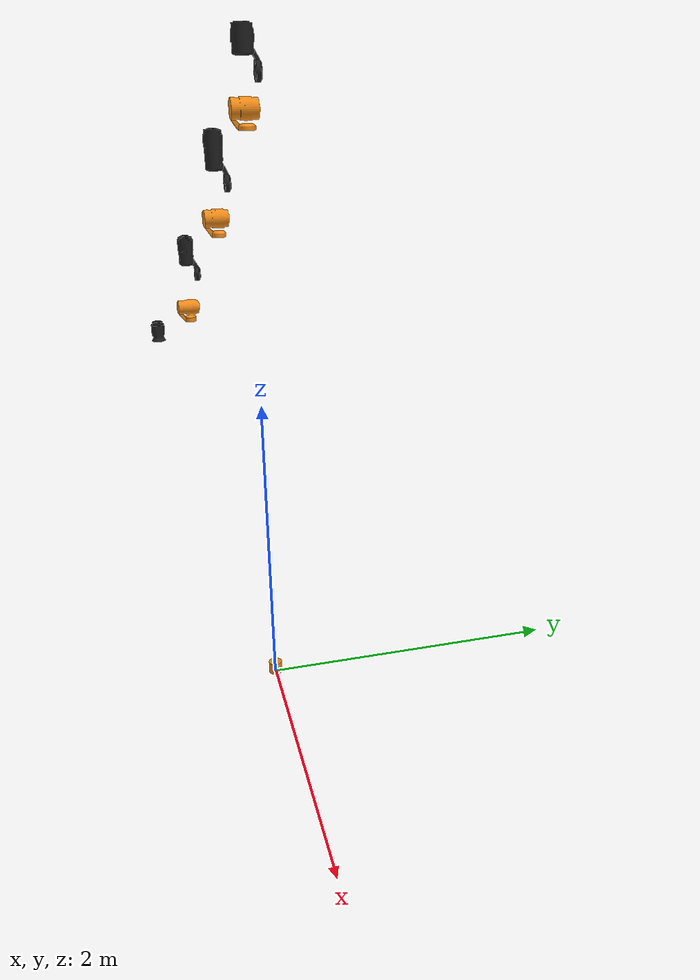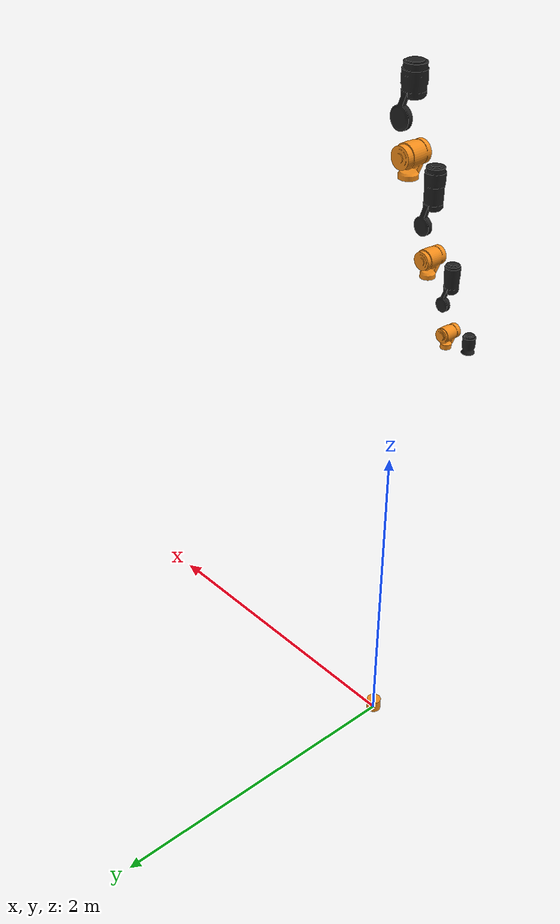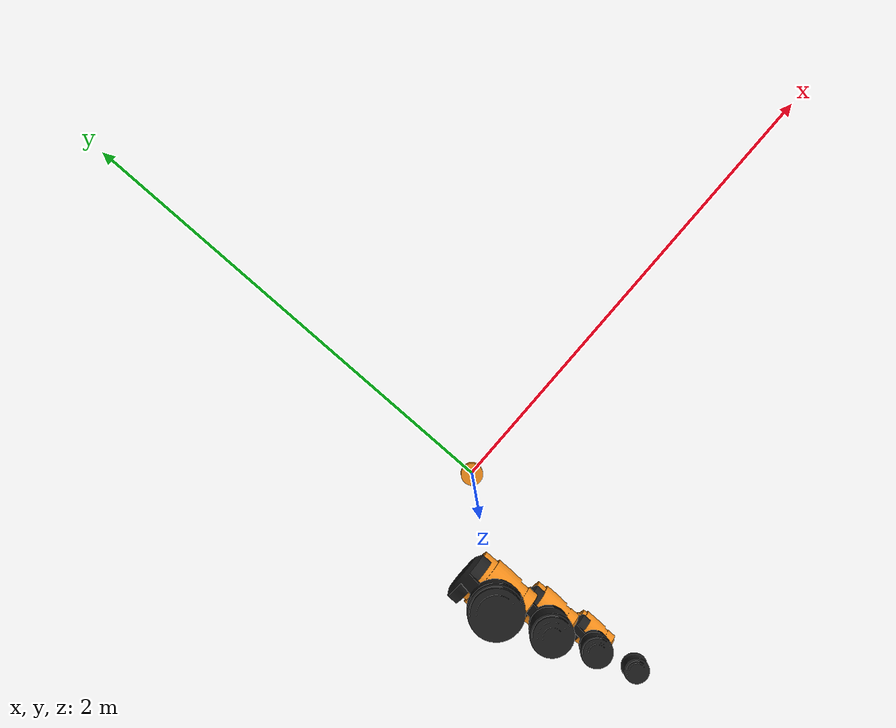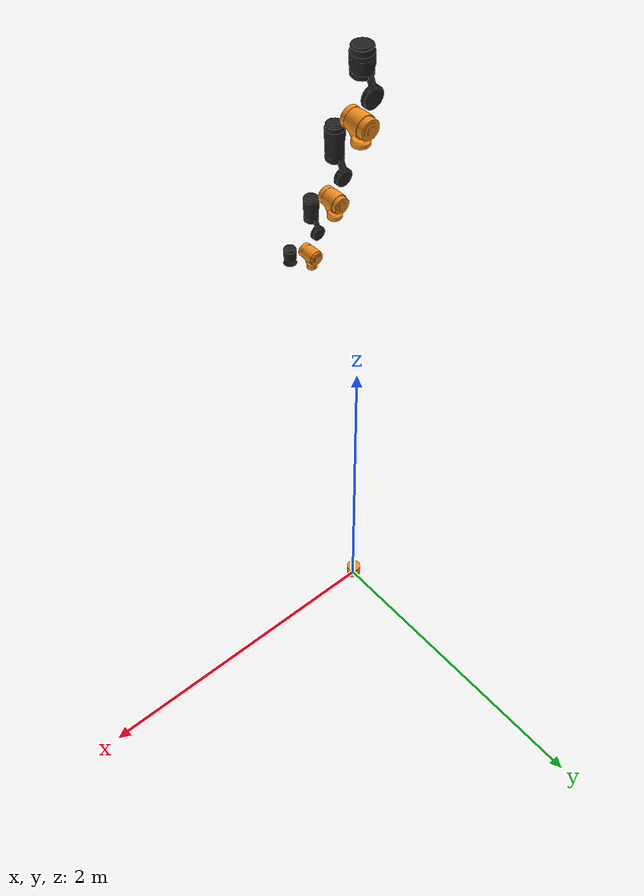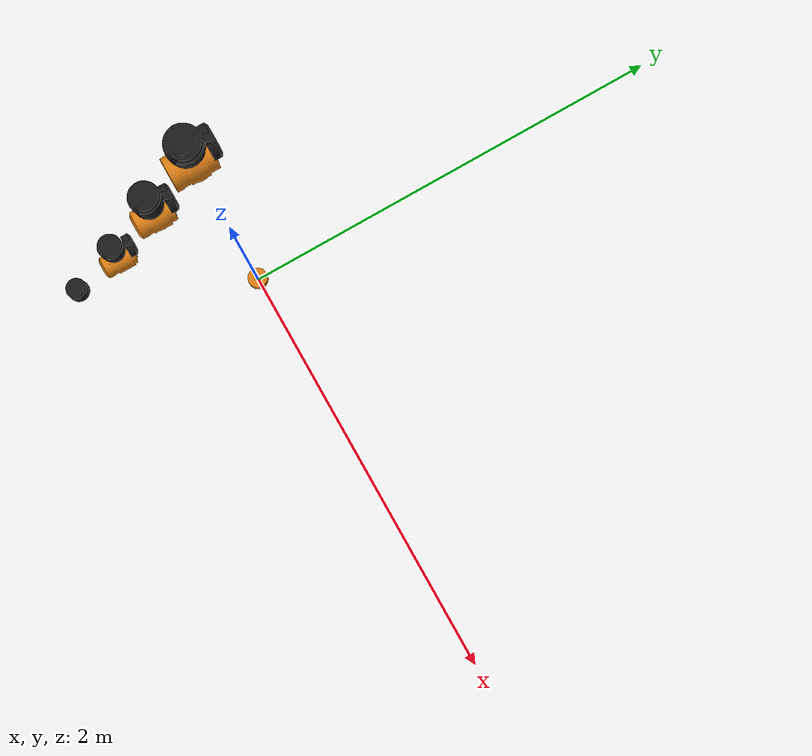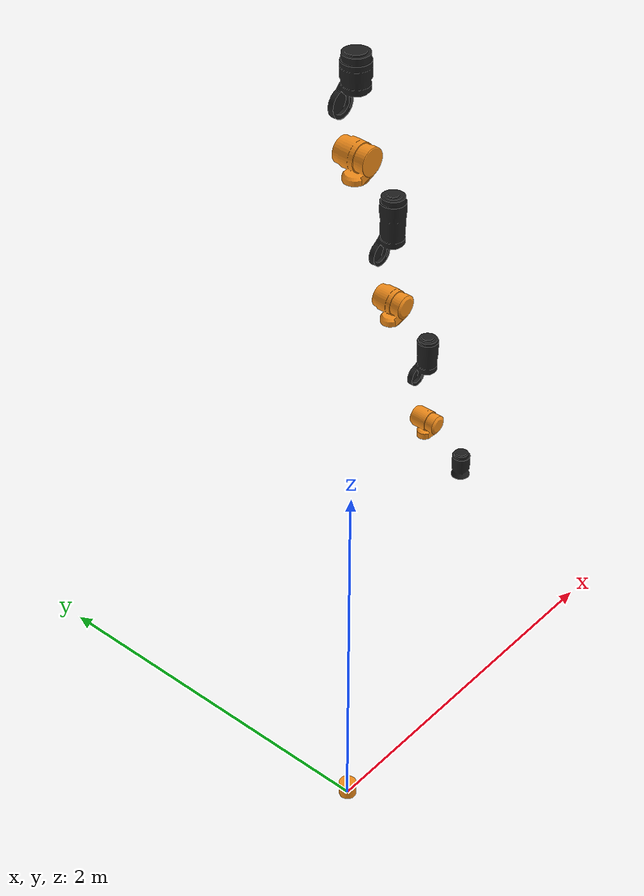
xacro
<?xml version="1.0"?>
<robot name="schunk_lwa" xmlns:xacro="http://www.ros.org/wiki/xacro">

  <xacro:include filename="$(find schunk_description)/urdf/lwa/lwa.gazebo.xacro" />
  <xacro:include filename="$(find schunk_description)/urdf/lwa/lwa.transmission.xacro" />
  <xacro:include filename="$(find schunk_description)/urdf/common.xacro"/>
  <xacro:macro name="schunk_lwa" params="parent name *origin">

    <!-- joint between parent link and arm_base_link -->
    <joint name="${name}_base_joint" type="fixed" >
      <parent link="${parent}" />
      <child link="${name}_base_link" />
    </joint>

    <link name="${name}_base_link">
      <xacro:default_inertial/>
      <visual>
        <origin xyz="0 0 0.04" rpy="0 0 0" />
        <geometry>
          <cylinder radius="0.045" length="0.08"/>
        </geometry>
        <material name="orange" />
      </visual>
      <collision>
        <origin xyz="0 0 0.04" rpy="0 0 0" />
        <geometry>
          <cylinder radius="0.045" length="0.08"/>
        </geometry>
      </collision>
    </link>

    <!-- joint between arm_base_link and arm_1_link -->
    <joint name="${name}_1_joint" type="revolute">
      <origin xyz="0 0 4.0" rpy="0 0 3.1415926"/>
      <parent link="${name}_base_link"/>
      <child link="${name}_1_link"/>
      <axis xyz="0 0 1"/>
      <dynamics damping="10" />
      <limit effort="370" velocity="2.0" lower="-3.1415" upper="3.1415"/>
      <!--limit effort="370" velocity="2.0" lower="-6.25" upper="6.25"/-->
      <!--safety_controller k_position="20" k_velocity="50" soft_lower_limit="${-6.25 + 0.01}" soft_upper_limit="${6.25 - 0.01}" /-->
    </joint>

    <link name="${name}_1_link">
      <xacro:default_inertial/>
      <visual>
        <origin xyz="0 0 0" rpy="0 0 0" />
        <geometry>
          <mesh filename="package://schunk_description/meshes/lwa/lwa1.stl" />
        </geometry>
        <material name="black" />
      </visual>
      <collision>
        <origin xyz="0 0 0" rpy="0 0 0" />
        <geometry>
          <mesh filename="package://schunk_description/meshes/lwa/lwa1.stl" />
        </geometry>
      </collision>
    </link>

    <!-- joint between arm_1_link and arm_2_link -->
    <joint name="${name}_2_joint" type="revolute">
      <origin xyz="0 0 -0.2" rpy="1.5708 0 0"/>
      <parent link="${name}_1_link"/>
      <child link="${name}_2_link"/>
      <axis xyz="0 0 1"/>
      <dynamics damping="10" />
      <limit effort="370" velocity="2.0" lower="-1.97" upper="1.97"/>
      <!--safety_controller k_position="20" k_velocity="50" soft_lower_limit="${-1.97 + 0.01}"   soft_upper_limit="${1.97 - 0.01}" /-->
    </joint>

    <link name="${name}_2_link">
      <xacro:default_inertial/>
      <visual>
        <origin xyz="0 0 0" rpy="0 0 0" />
        <geometry>
          <mesh filename="package://schunk_description/meshes/lwa/lwa2.stl" />
        </geometry>
        <material name="orange" />
      </visual>
      <collision>
        <origin xyz="0 0 0" rpy="0 0 0" />
        <geometry>
          <mesh filename="package://schunk_description/meshes/lwa/lwa2.stl"/>
        </geometry>
      </collision>
    </link>

    <!-- joint between arm_2_link and arm_3_link -->
    <joint name="${name}_3_joint" type="revolute">
      <origin xyz="0 -0.408 -0.2" rpy="-1.5708 0 0"/>
      <parent link="${name}_2_link"/>
      <child link="${name}_3_link"/>
      <axis xyz="0 0 1"/>
      <dynamics damping="5" />
      <limit effort="176" velocity="2.0" lower="-3.1415" upper="3.1415"/>
      <!--limit effort="176" velocity="2.0" lower="-6.25" upper="6.25"/-->
      <!--safety_controller k_position="20" k_velocity="25" soft_lower_limit="${-6.25 + 0.01}" soft_upper_limit="${6.25 - 0.01}" /-->
    </joint>

    <link name="${name}_3_link">
      <xacro:default_inertial/>
      <visual>
        <origin xyz="0 0 0" rpy="0 0 0" />
        <geometry>
          <mesh filename="package://schunk_description/meshes/lwa/lwa3.stl" />
        </geometry>
        <material name="black" />
      </visual>
      <collision>
        <origin xyz="0 0 0" rpy="0 0 0" />
        <geometry>
          <mesh filename="package://schunk_description/meshes/lwa/lwa3.stl"/>
        </geometry>
      </collision>
    </link>

    <!-- joint between arm_3_link and arm_4_link -->
    <joint name="${name}_4_joint" type="revolute">
      <origin xyz="0 0 -0.2" rpy="1.5708 0 0" />
      <parent link="${name}_3_link"/>
      <child link="${name}_4_link"/>
      <axis xyz="0 0 1" />
      <dynamics damping="5" />
      <limit effort="176" velocity="2.0" lower="-1.97" upper="1.97"/>
      <!--safety_controller k_position="20" k_velocity="25" soft_lower_limit="${-1.97 + 0.01}" soft_upper_limit="${1.97 - 0.01}" /-->
    </joint>

    <link name="${name}_4_link">
      <xacro:default_inertial/>
      <visual>
        <origin xyz="0 0 0" rpy="0 0 0" />
        <geometry>
          <mesh filename="package://schunk_description/meshes/lwa/lwa4.stl" />
        </geometry>
        <material name="orange" />
      </visual>
      <collision>
        <origin xyz="0 0 0" rpy="0 0 0" />
        <geometry>
          <mesh filename="package://schunk_description/meshes/lwa/lwa4.stl"/>
        </geometry>
      </collision>
    </link>

    <!-- joint between arm_4_link and arm_5_link -->
    <joint name="${name}_5_joint" type="revolute">
      <origin xyz="0 -0.3165 -0.2" rpy="-1.5708 0 0" />
      <parent link="${name}_4_link"/>
      <child link="${name}_5_link"/>
      <axis xyz="0 0 1" />
      <dynamics damping="5" />
      <limit effort="41.6" velocity="2.0" lower="-3.1415" upper="3.1415" />
      <!--limit effort="41.6" velocity="2.0" lower="-6.25" upper="6.25" /-->
      <!--safety_controller k_position="20" k_velocity="25" soft_lower_limit="${-6.25 + 0.01}" soft_upper_limit="${6.25 - 0.01}" /-->
    </joint>

    <link name="${name}_5_link">
      <xacro:default_inertial/>
      <visual>
        <origin xyz="0 0 0" rpy="0 0 0" />
        <geometry>
          <mesh filename="package://schunk_description/meshes/lwa/lwa5.stl" />
        </geometry>
        <material name="black" />
      </visual>
      <collision>
        <origin xyz="0 0 0" rpy="0 0 0" />
        <geometry>
          <mesh filename="package://schunk_description/meshes/lwa/lwa5.stl"/>
        </geometry>
      </collision>
    </link>

    <!-- joint between arm_5_link and arm_6_link -->
    <joint name="${name}_6_joint" type="revolute">
      <origin xyz="0 0 -0.2" rpy="1.5708 0 0" />
      <parent link="${name}_5_link"/>
      <child link="${name}_6_link"/>
      <axis xyz="0 0 1" />
      <dynamics damping="5" />
      <limit effort="20.1" velocity="2.0" lower="-1.97" upper="1.97" />
      <!--safety_controller k_position="20" k_velocity="25" soft_lower_limit="${-1.97 + 0.01}" soft_upper_limit="${1.97 - 0.01}" /-->
    </joint>

    <link name="${name}_6_link">
      <xacro:default_inertial/>
      <visual>
        <origin xyz="0 0 0" rpy="0 0 0" />
        <geometry>
          <mesh filename="package://schunk_description/meshes/lwa/lwa6.stl" />
        </geometry>
        <material name="orange" />
      </visual>
      <collision>
        <origin xyz="0 0 0" rpy="0 0 0" />
        <geometry>
          <mesh filename="package://schunk_description/meshes/lwa/lwa6.stl"/>
        </geometry>
      </collision>
    </link>

    <!-- joint between arm_6_link and arm_7_link -->
    <joint name="${name}_7_joint" type="revolute">
      <origin xyz="0 -0.1927 -0.2" rpy="-1.5708 0 0" />
      <parent link="${name}_6_link"/>
      <child link="${name}_7_link"/>
      <axis xyz="0 0 1" />
      <dynamics damping="5" />
      <limit effort="9.6" velocity="2.0" lower="-3.1415" upper="3.1415" />
      <!--limit effort="9.6" velocity="2.0" lower="-6.25" upper="6.25" /-->
      <!--safety_controller k_position="20" k_velocity="25" soft_lower_limit="${-6.25 + 0.01}" soft_upper_limit="${6.25 - 0.01}" /-->
    </joint>

    <link name="${name}_7_link">
      <xacro:default_inertial/>
      <visual>
        <origin xyz="0 0 0" rpy="0 0 0" />
        <geometry>
          <mesh filename="package://schunk_description/meshes/lwa/lwa7.stl" />
        </geometry>
        <material name="black" />
      </visual>
      <collision>
        <origin xyz="0 0 0" rpy="0 0 0" />
        <geometry>
          <mesh filename="package://schunk_description/meshes/lwa/lwa7.stl"/>
        </geometry>
      </collision>
    </link>

    <!-- extensions -->
    <xacro:schunk_lwa_gazebo name="${name}" />
    <xacro:schunk_lwa_transmission name="${name}" />

  </xacro:macro>

  <link name="world"/>
  <xacro:schunk_lwa parent="world" name="schunk_lwa">
    <origin xyz="0 0 0" rpy="0 0 0"/>
  </xacro:schunk_lwa>
</robot>
